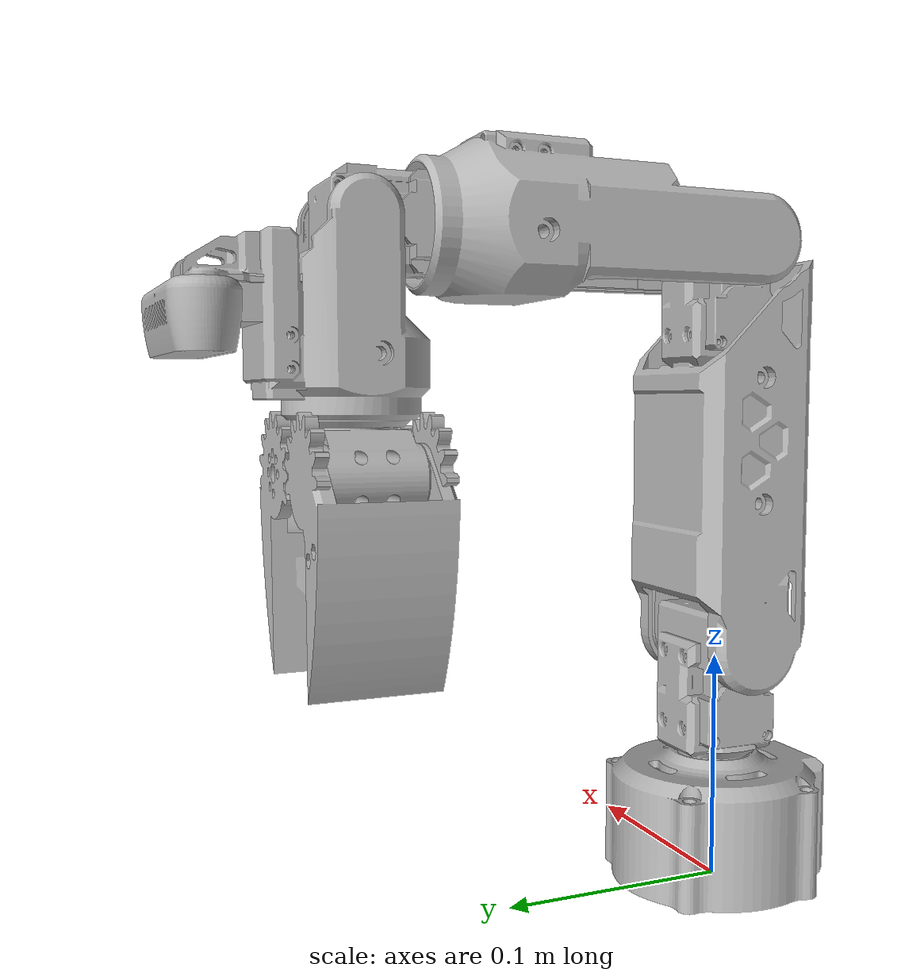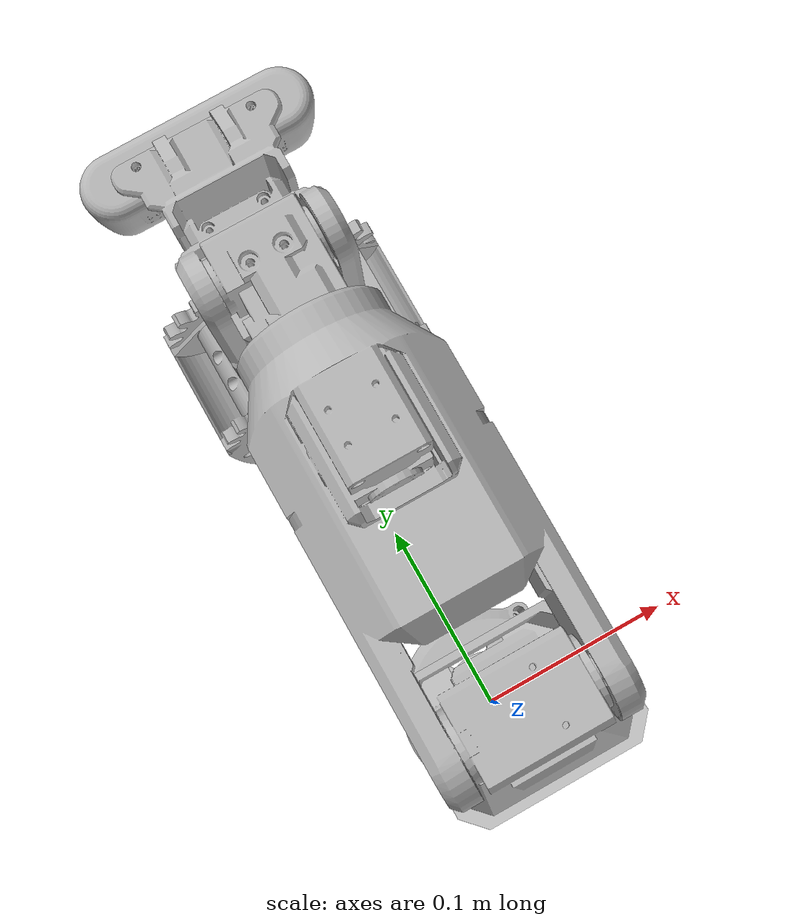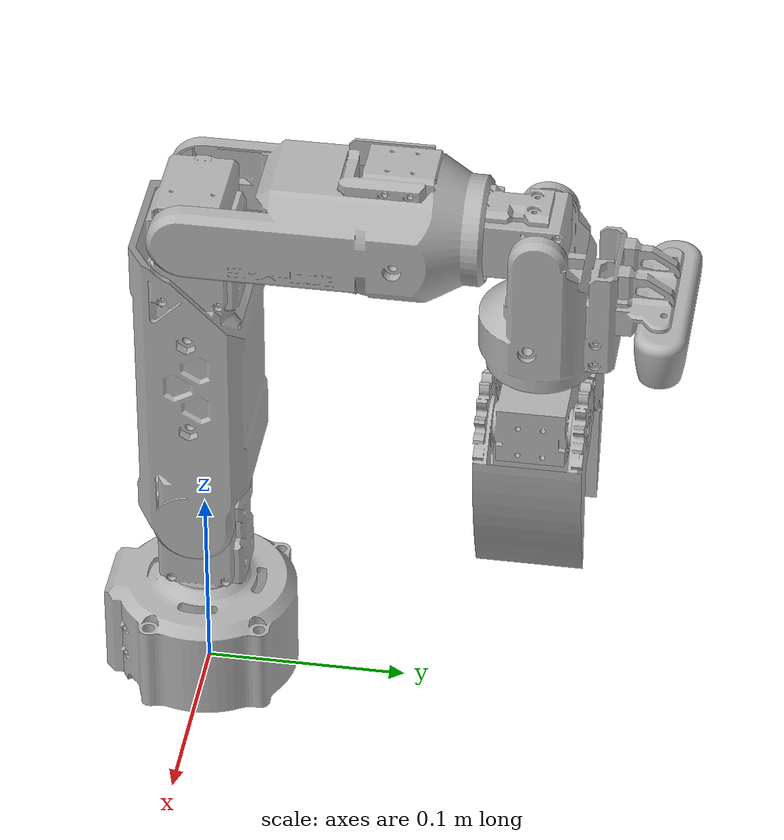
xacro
<?xml version="1.0"?>
<robot xmlns:xacro="http://www.ros.org/wiki/xacro" name="small_arm">
    <xacro:arg name="initial_positions_file" default="initial_positions.yaml" />

    <!-- Import small_arm urdf file -->
    <xacro:include filename="$(find small_arm_description)/urdf/small_arm.urdf.xacro" />

    <!-- Import control_xacro -->
    <xacro:include filename="small_arm.ros2_control.xacro" />

    <xacro:small_arm_ros2_control name="FakeSystem" initial_positions_file="$(arg initial_positions_file)"/>

</robot>

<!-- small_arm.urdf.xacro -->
<robot name="small_arm" xmlns:xacro="http://ros.org/wiki/xacro">
  <xacro:include filename="$(find small_arm_description)/urdf/small_arm.xacro" />
  <xacro:include filename="$(find small_arm_description)/urdf/small_arm.ros2_control.xacro" />

  <link name="world"/>

  <xacro:small_arm parent="world">
    <origin xyz="0 0 0" rpy="0 0 0" />
  </xacro:small_arm>

</robot>

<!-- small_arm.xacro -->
<robot name="small_arm" xmlns:xacro="http://www.ros.org/wiki/xacro">

  <xacro:include filename="$(find small_arm_description)/urdf/materials.xacro" />

  <xacro:macro name="small_arm" params="parent base_name:=base_link *origin">

  <joint name="origin_to_base_link" type="fixed">
    <xacro:insert_block name="origin" />
    <parent link="${parent}" />
    <child link="${base_name}" />
    <axis xyz="0 0 0" />
  </joint>

  <link name="${base_name}">
  <inertial>
    <origin xyz="6.583680213469905e-06 -0.010020414765013672 0.028054295745135273" rpy="0 0 0"/>
    <mass value="1.291881447401789"/>
    <inertia ixx="0.001017" iyy="0.000798" izz="0.00122" ixy="-0.0" iyz="-3.2e-05" ixz="0.0"/>
  </inertial>
  <visual>
    <origin xyz="0 0 0" rpy="0 0 0"/>
    <geometry>
        <mesh filename="package://small_arm_description/meshes/base_link.stl" scale="0.001 0.001 0.001"/>
    </geometry>
    <material name="silver"/>
  </visual>
  <collision>
    <origin xyz="0 0 0" rpy="0 0 0"/>
    <geometry>
        <mesh filename="package://small_arm_description/meshes/base_link.stl" scale="0.001 0.001 0.001"/>
      </geometry>
    </collision>
  </link>

  <link name="link1">
  <inertial>
    <origin xyz="0.0005537302728879505 -3.989448908630728e-05 0.037038629210684425" rpy="0 0 0"/>
    <mass value="0.817449728930332"/>
    <inertia ixx="0.000383" iyy="0.000409" izz="0.00022" ixy="0.0" iyz="0.0" ixz="-3e-06"/>
  </inertial>
  <visual>
    <origin xyz="0.0 -4.1e-05 -0.053" rpy="0 0 0"/>
    <geometry>
        <mesh filename="package://small_arm_description/meshes/link_1_1.stl" scale="0.001 0.001 0.001"/>
    </geometry>
    <material name="silver"/>
  </visual>
  <collision>
    <origin xyz="0.0 -4.1e-05 -0.053" rpy="0 0 0"/>
    <geometry>
        <mesh filename="package://small_arm_description/meshes/link_1_1.stl" scale="0.001 0.001 0.001"/>
      </geometry>
    </collision>
  </link>

  <link name="link2">
  <inertial>
    <origin xyz="-0.024427682432744808 -0.0006951262423943992 0.09244818830678549" rpy="0 0 0"/>
    <mass value="2.530467328750089"/>
    <inertia ixx="0.007365" iyy="0.007836" izz="0.001385" ixy="-0.0" iyz="0.00013" ixz="-3e-05"/>
  </inertial>
  <visual>
    <origin xyz="-0.0245 0.0 -0.109" rpy="0 0 0"/>
    <geometry>
        <mesh filename="package://small_arm_description/meshes/link_2_1.stl" scale="0.001 0.001 0.001"/>
    </geometry>
    <material name="silver"/>
  </visual>
  <collision>
    <origin xyz="-0.0245 0.0 -0.109" rpy="0 0 0"/>
    <geometry>
        <mesh filename="package://small_arm_description/meshes/link_2_1.stl" scale="0.001 0.001 0.001"/>
      </geometry>
    </collision>
  </link>

  <link name="link3">
  <inertial>
    <origin xyz="-0.02460425910708876 0.07785646945010617 0.0036503427791832466" rpy="0 0 0"/>
    <mass value="1.5891656965493803"/>
    <inertia ixx="0.002408" iyy="0.001132" izz="0.002797" ixy="3e-06" iyz="-5.1e-05" ixz="0.0"/>
  </inertial>
  <visual>
    <origin xyz="-0.0244 -0.0 -0.279" rpy="0 0 0"/>
    <geometry>
        <mesh filename="package://small_arm_description/meshes/link_3_1.stl" scale="0.001 0.001 0.001"/>
    </geometry>
    <material name="silver"/>
  </visual>
  <collision>
    <origin xyz="-0.0244 -0.0 -0.279" rpy="0 0 0"/>
    <geometry>
        <mesh filename="package://small_arm_description/meshes/link_3_1.stl" scale="0.001 0.001 0.001"/>
      </geometry>
    </collision>
  </link>

  <link name="link4">
  <inertial>
    <origin xyz="0.0005678122855020656 0.028502036892318075 0.00010812835093654272" rpy="0 0 0"/>
    <mass value="0.4500719035752892"/>
    <inertia ixx="0.000146" iyy="8.3e-05" izz="0.000143" ixy="-1e-06" iyz="-0.0" ixz="-0.0"/>
  </inertial>
  <visual>
    <origin xyz="0.0003 -0.121766 -0.280316" rpy="0 0 0"/>
    <geometry>
        <mesh filename="package://small_arm_description/meshes/link_4_1.stl" scale="0.001 0.001 0.001"/>
    </geometry>
    <material name="silver"/>
  </visual>
  <collision>
    <origin xyz="0.0003 -0.121766 -0.280316" rpy="0 0 0"/>
    <geometry>
        <mesh filename="package://small_arm_description/meshes/link_4_1.stl" scale="0.001 0.001 0.001"/>
      </geometry>
    </collision>
  </link>

  <link name="link5">
  <inertial>
    <origin xyz="-0.019068054583883113 0.009694576419165046 -0.04274059819483081" rpy="0 0 0"/>
    <mass value="1.0859764685043407"/>
    <inertia ixx="0.000829" iyy="0.00064" izz="0.000658" ixy="-0.0" iyz="-0.0001" ixz="-0.0"/>
  </inertial>
  <visual>
    <origin xyz="-0.0187 -0.165647 -0.280441" rpy="0 0 0"/>
    <geometry>
        <mesh filename="package://small_arm_description/meshes/link_5_1.stl" scale="0.001 0.001 0.001"/>
    </geometry>
    <material name="silver"/>
  </visual>
  <collision>
    <origin xyz="-0.0187 -0.165647 -0.280441" rpy="0 0 0"/>
    <geometry>
        <mesh filename="package://small_arm_description/meshes/link_5_1.stl" scale="0.001 0.001 0.001"/>
      </geometry>
    </collision>
  </link>

  <link name="link6">
  <inertial>
    <origin xyz="0.004492294331015427 0.0003709408309400253 -0.019015271355907637" rpy="0 0 0"/>
    <mass value="0.5127274279729177"/>
    <inertia ixx="9.5e-05" iyy="0.000226" izz="0.000235" ixy="-1e-06" iyz="0.0" ixz="1e-06"/>
  </inertial>
  <visual>
    <origin xyz="0.0004 -0.165647 -0.205922" rpy="0 0 0"/>
    <geometry>
        <mesh filename="package://small_arm_description/meshes/Claw_base_1.stl" scale="0.001 0.001 0.001"/>
    </geometry>
    <material name="silver"/>
  </visual>
  <collision>
    <origin xyz="0.0004 -0.165647 -0.205922" rpy="0 0 0"/>
    <geometry>
        <mesh filename="package://small_arm_description/meshes/Claw_base_1.stl" scale="0.001 0.001 0.001"/>
      </geometry>
    </collision>
  </link>

  <link name="gripper_link1">
  <inertial>
    <origin xyz="0.009553177578958301 -0.019099491341480757 -0.027462032562735744" rpy="0 0 0"/>
    <mass value="0.3481919018430052"/>
    <inertia ixx="0.000338" iyy="0.000245" izz="0.000155" ixy="0.0" iyz="-0.0" ixz="2.6e-05"/>
  </inertial>
  <visual>
    <origin xyz="-0.0216 -0.184647 -0.184772" rpy="0 0 0"/>
    <geometry>
        <mesh filename="package://small_arm_description/meshes/Claw_1_1.stl" scale="0.001 0.001 0.001"/>
    </geometry>
    <material name="silver"/>
  </visual>
  <collision>
    <origin xyz="-0.0216 -0.184647 -0.184772" rpy="0 0 0"/>
    <geometry>
        <mesh filename="package://small_arm_description/meshes/Claw_1_1.stl" scale="0.001 0.001 0.001"/>
      </geometry>
    </collision>
  </link>

<link name="gripper_link2">
  <inertial>
    <origin xyz="-0.008862773747378604 -0.01908264305352636 -0.025794573876087107" rpy="0 0 0"/>
    <mass value="0.3632084794432327"/>
    <inertia ixx="0.000361" iyy="0.000263" izz="0.000164" ixy="0.0" iyz="0.0" ixz="-3.1e-05"/>
  </inertial>
  <visual>
    <origin xyz="0.0224 -0.184582 -0.184772" rpy="0 0 0"/>
    <geometry>
        <mesh filename="package://small_arm_description/meshes/Claw_2_1.stl" scale="0.001 0.001 0.001"/>
    </geometry>
    <material name="silver"/>
  </visual>
  <collision>
    <origin xyz="0.0224 -0.184582 -0.184772" rpy="0 0 0"/>
    <geometry>
        <mesh filename="package://small_arm_description/meshes/Claw_2_1.stl" scale="0.001 0.001 0.001"/>
      </geometry>
    </collision>
  </link>

  <link name="camera_link">
  <inertial>
    <origin xyz="-0.022501861739521612 -4.8500070798096484e-05 -0.012169837448304244" rpy="0 0 0"/>
    <mass value="0.37837987609307205"/>
    <inertia ixx="3.5e-05" iyy="0.00024" izz="0.000238" ixy="-0.0" iyz="-0.0" ixz="0.0"/>
  </inertial>
  <visual>
    <origin xyz="-0.0222 -0.225439 -0.254372" rpy="0 0 0"/>
    <geometry>
        <mesh filename="package://small_arm_description/meshes/Camera_1.stl" scale="0.001 0.001 0.001"/>
    </geometry>
    <material name="silver"/>
  </visual>
  <collision>
    <origin xyz="-0.0222 -0.225439 -0.254372" rpy="0 0 0"/>
    <geometry>
        <mesh filename="package://small_arm_description/meshes/Camera_1.stl" scale="0.001 0.001 0.001"/>
      </geometry>
    </collision>
  </link>

  <joint name="joint1" type="revolute">
    <origin xyz="0.0 4.1e-05 0.053" rpy="0 0 0"/>
    <parent link="${base_name}"/>
    <child link="link1"/>
    <axis xyz="-0.0 -0.0 1.0"/>
    <limit
      lower="-3.14"
      upper="3.14"
      effort="1"
      velocity="4.8" />
  </joint>

  <joint name="joint2" type="revolute">
    <origin xyz="0.0245 -4.1e-05 0.056" rpy="0 0 0"/>
    <parent link="link1"/>
    <child link="link2"/>
    <axis xyz="1.0 -0.0 0.0"/>
    <limit
      lower="-3.14"
      upper="3.14"
      effort="1"
      velocity="4.8" />
  </joint>

  <joint name="joint3" type="revolute">
    <origin xyz="-0.0001 0.0 0.17" rpy="0 0 0"/>
    <parent link="link2"/>
    <child link="link3"/>
    <axis xyz="1.0 0.0 0.0"/>
    <limit
      lower="-3.14"
      upper="3.14"
      effort="1"
      velocity="4.8" />
  </joint>

  <joint name="joint4" type="revolute">
    <origin xyz="-0.0247 0.121766 0.001316" rpy="0 0 0"/>
    <parent link="link3"/>
    <child link="link4"/>
    <axis xyz="-0.0 1.0 -0.0"/>
    <limit
      lower="-3.14"
      upper="3.14"
      effort="1"
      velocity="4.8" />
  </joint>

  <joint name="joint5" type="revolute">
    <origin xyz="0.019 0.043881 0.000125" rpy="0 0 0"/>
    <parent link="link4"/>
    <child link="link5"/>
    <axis xyz="1.0 0.0 -0.0"/>
    <limit
      lower="-3.14"
      upper="3.14"
      effort="1"
      velocity="4.8" />
  </joint>

  <joint name="joint6" type="revolute">
    <origin xyz="-0.0191 0.0 -0.074519" rpy="0 0 0"/>
    <parent link="link5"/>
    <child link="link6"/>
    <axis xyz="0.0 -0.0 -1.0"/>
    <limit
      lower="-3.14"
      upper="3.14"
      effort="1"
      velocity="4.8" />
  </joint>

  <joint name="gripper_joint1" type="revolute">
    <origin xyz="0.022 0.019 -0.02115" rpy="0 0 0"/>
    <parent link="link6"/>
    <child link="gripper_link1"/>
    <axis xyz="0.0 1.0 0.0"/>
    <limit
      lower="-3.14"
      upper="3.14"
      effort="1"
      velocity="4.8" />
  </joint>

  <joint name="gripper_joint2" type="continuous">
    <origin xyz="-0.022 0.018935 -0.02115" rpy="0 0 0"/>
    <parent link="link6"/>
    <child link="gripper_link2"/>
    <axis xyz="-0.0 1.0 -0.0"/>
    <mimic joint="gripper_joint1" multiplier="-1"/>
  </joint>

  <joint name="camera_fixed" type="fixed">
    <origin xyz="0.0035 0.059792 -0.026069" rpy="0 0 0"/>
    <parent link="link5"/>
    <child link="camera_link"/>
  </joint>

  </xacro:macro>
</robot>

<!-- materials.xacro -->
<robot name="SMW-G02_urdf" xmlns:xacro="http://www.ros.org/wiki/xacro" >

<material name="silver">
  <color rgba="0.700 0.700 0.700 1.000"/>
</material>

</robot>
